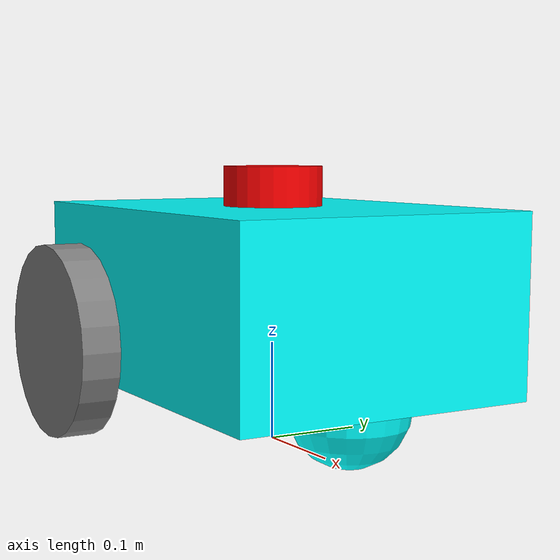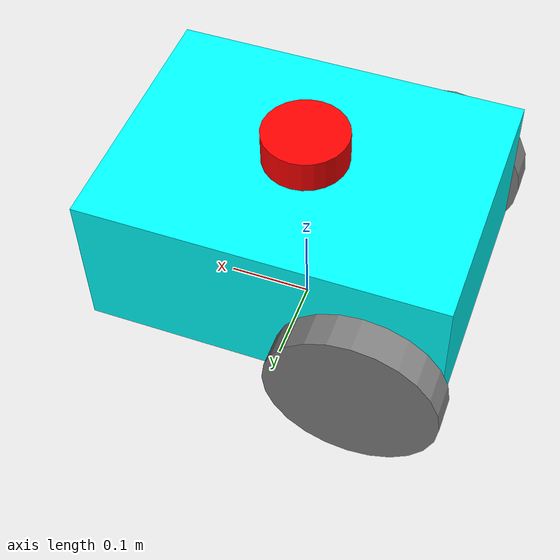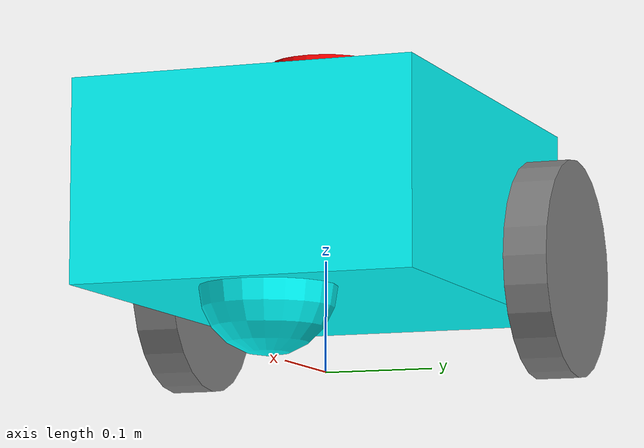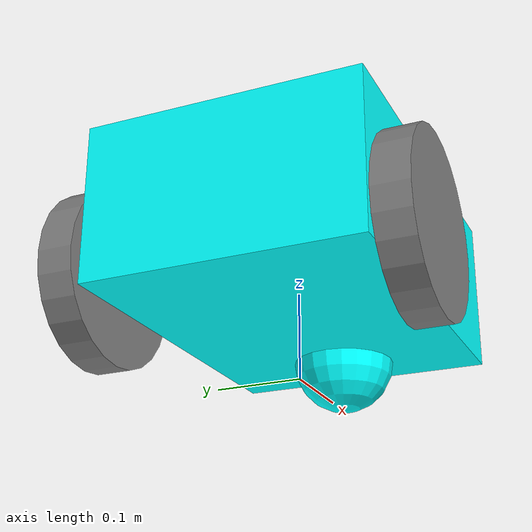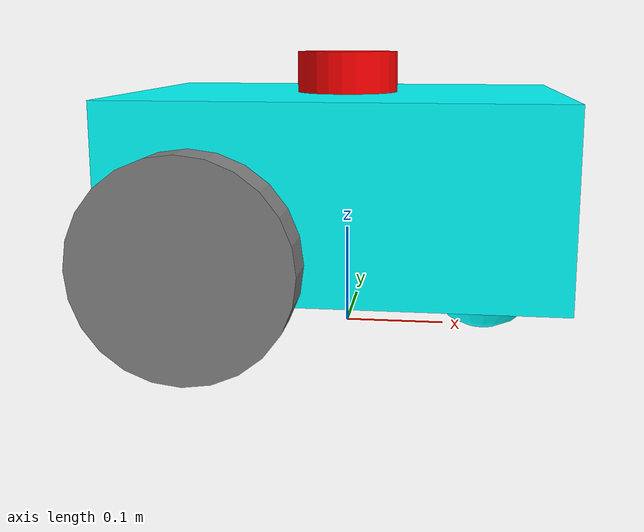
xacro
<?xml version="1.0"?>
<robot xmlns:xacro="http://www.ros.org/wiki/xacro" name="maze_bot">

  <!-- Include the base robot model -->
  <xacro:include filename="$(find maze_bot_description)/urdf/maze_bot.urdf.xacro" />

  <!-- Include Gazebo-specific configurations -->
  <xacro:include filename="$(find maze_bot_description)/urdf/maze_bot_gazebo.xacro" />

</robot>

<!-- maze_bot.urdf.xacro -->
<robot xmlns:xacro="http://www.ros.org/wiki/xacro" name="maze_bot">

  <!-- Define robot parameters -->
  <xacro:property name="base_width" value="0.31"/>
  <xacro:property name="base_length" value="0.42"/>
  <xacro:property name="base_height" value="0.18"/>

  <xacro:property name="wheel_radius" value="0.10"/>
  <xacro:property name="wheel_width" value="0.04"/>
  <xacro:property name="wheel_ygap" value="0.025"/>
  <xacro:property name="wheel_zoff" value="0.05"/>
  <xacro:property name="wheel_xoff" value="0.12"/>

  <xacro:property name="caster_xoff" value="0.14"/>

  <!-- Define intertial property macros  -->
  <xacro:macro name="box_inertia" params="m w h d">
    <inertial>
      <origin xyz="0 0 0" rpy="${pi/2} 0 ${pi/2}"/>
      <mass value="${m}"/>
      <inertia ixx="${(m/12) * (h*h + d*d)}" ixy="0.0" ixz="0.0" iyy="${(m/12) * (w*w + d*d)}" iyz="0.0" izz="${(m/12) * (w*w + h*h)}"/>
    </inertial>
  </xacro:macro>

  <xacro:macro name="cylinder_inertia" params="m r h">
    <inertial>
      <origin xyz="0 0 0" rpy="${pi/2} 0 0" />
      <mass value="${m}"/>
      <inertia ixx="${(m/12) * (3*r*r + h*h)}" ixy = "0" ixz = "0" iyy="${(m/12) * (3*r*r + h*h)}" iyz = "0" izz="${(m/2) * (r*r)}"/>
    </inertial>
  </xacro:macro>

  <xacro:macro name="sphere_inertia" params="m r">
    <inertial>
      <mass value="${m}"/>
      <inertia ixx="${(2/5) * m * (r*r)}" ixy="0.0" ixz="0.0" iyy="${(2/5) * m * (r*r)}" iyz="0.0" izz="${(2/5) * m * (r*r)}"/>
    </inertial>
  </xacro:macro>

  <!-- Robot base -->
  <link name="base_link">
    <visual>
      <geometry>
        <box size="${base_length} ${base_width} ${base_height}"/>
      </geometry>
      <material name="Cyan">
        <color rgba="0 1.0 1.0 1.0"/>
      </material>
    </visual>

    <collision>
      <geometry>
        <box size="${base_length} ${base_width} ${base_height}"/>
      </geometry>
    </collision>

    <xacro:box_inertia m="15" w="${base_width}" d="${base_length}" h="${base_height}"/>
  </link>

  <!-- Robot Footprint -->
  <link name="base_footprint"/>

  <joint name="base_joint" type="fixed">
    <parent link="base_footprint"/>
    <child link="base_link"/>
    <origin xyz="0.0 0.0 ${(wheel_radius+wheel_zoff)}" rpy="0 0 0"/>
  </joint>

  <!-- Wheels -->
  <xacro:macro name="wheel" params="prefix x_reflect y_reflect">
    <link name="${prefix}_link">
      <visual>
        <origin xyz="0 0 0" rpy="${pi/2} 0 0"/>
        <geometry>
            <cylinder radius="${wheel_radius}" length="${wheel_width}"/>
        </geometry>
        <material name="Gray">
          <color rgba="0.5 0.5 0.5 1.0"/>
        </material>
      </visual>

      <collision>
        <origin xyz="0 0 0" rpy="${pi/2} 0 0"/>
        <geometry>
          <cylinder radius="${wheel_radius}" length="${wheel_width}"/>
        </geometry>
      </collision>

      <xacro:cylinder_inertia m="0.5" r="${wheel_radius}" h="${wheel_width}"/>
    </link>

    <joint name="${prefix}_joint" type="continuous">
      <parent link="base_link"/>
      <child link="${prefix}_link"/>
      <origin xyz="${x_reflect*wheel_xoff} ${y_reflect*(base_width/2+wheel_ygap)} ${-wheel_zoff}" rpy="0 0 0"/>
      <axis xyz="0 1 0"/>
    </joint>
  </xacro:macro>

  <xacro:wheel prefix="drivewhl_l" x_reflect="-1" y_reflect="1" />
  <xacro:wheel prefix="drivewhl_r" x_reflect="-1" y_reflect="-1" />

  <!-- Caster Wheel -->
  <link name="front_caster">
    <visual>
      <geometry>
        <sphere radius="${(wheel_radius+wheel_zoff-(base_height/2))}"/>
      </geometry>
      <material name="Cyan">
        <color rgba="0 1.0 1.0 1.0"/>
      </material>
    </visual>

    <collision>
      <origin xyz="0 0 0" rpy="0 0 0"/>
      <geometry>
        <sphere radius="${(wheel_radius+wheel_zoff-(base_height/2))}"/>
      </geometry>
    </collision>

    <xacro:sphere_inertia m="0.5" r="${(wheel_radius+wheel_zoff-(base_height/2))}"/>
  </link>

  <joint name="caster_joint" type="fixed">
    <parent link="base_link"/>
    <child link="front_caster"/>
    <origin xyz="${caster_xoff} 0.0 ${-(base_height/2)}" rpy="0 0 0"/>
  </joint>

  <!-- LiDAR -->
  <link name="laser">
    <visual>
      <origin xyz="0 0 0" rpy="0 0 0"/>
      <geometry>
        <cylinder radius="0.05" length="0.04"/>
      </geometry>
      <material name="Red">
        <color rgba="1.0 0 0 1.0"/>
      </material>
    </visual>

    <collision>
      <origin xyz="0 0 0" rpy="0 0 0"/>
      <geometry>
        <cylinder radius="0.05" length="0.04"/>
      </geometry>
    </collision>

    <xacro:cylinder_inertia m="0.1" r="0.05" h="0.04"/>
  </link>

  <joint name="laser_joint" type="fixed">
    <parent link="base_link"/>
    <child link="laser"/>
    <origin xyz="0 0 ${base_height/2+0.02}" rpy="0 0 0"/>
  </joint>

</robot>
